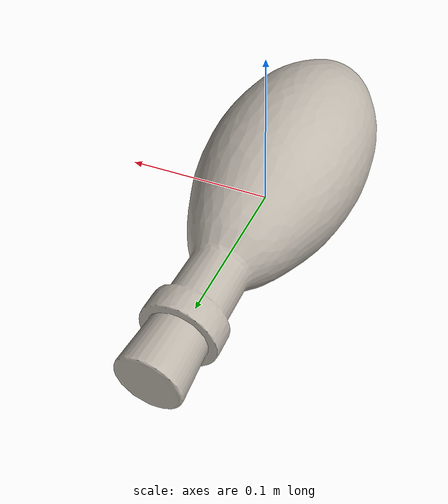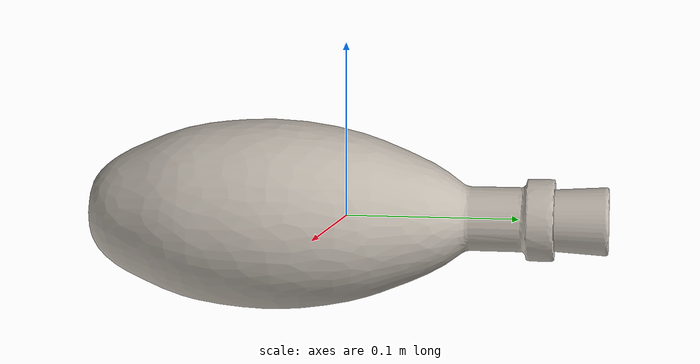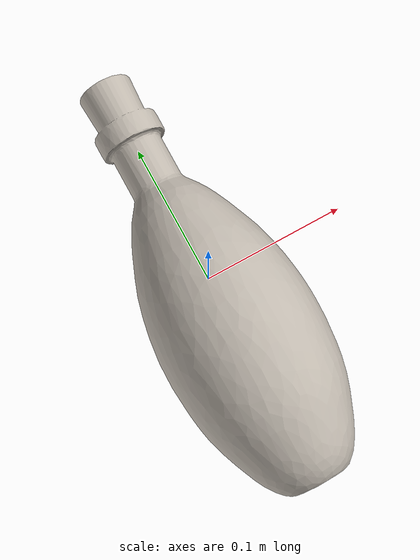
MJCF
<mujoco model="vase_9c502a52">
  <compiler angle="radian"/>
  <asset>
    <texture type="2d" name="vase_9c502a52_tex" file="vase_9c502a52_visual_0.png"/>
    <material name="vase_9c502a52_mat" texture="vase_9c502a52_tex"/>
    <mesh name="vase_9c502a52_visual" content_type="model/obj" file="vase_9c502a52_visual.obj" scale="-1 2.00649 1"/>
    <mesh name="vase_9c502a52_c0" content_type="model/obj" file="vase_9c502a52_c0.obj" scale="-1 2.00649 1"/>
  </asset>
  <worldbody>
    <body name="vase_9c502a52">
      <freejoint/>
      <geom name="vase_9c502a52_visual" type="mesh" mesh="vase_9c502a52_visual" mass="1e-8" contype="0" conaffinity="0" group="2" material="vase_9c502a52_mat"/>
      <geom name="vase_9c502a52_c0" type="mesh" mesh="vase_9c502a52_c0" group="3" density="355.259" friction="0.9 0.05 0.005" condim="4" rgba="0.4 0.5 0.9 0.35"/>
    </body>
  </worldbody>
</mujoco>
